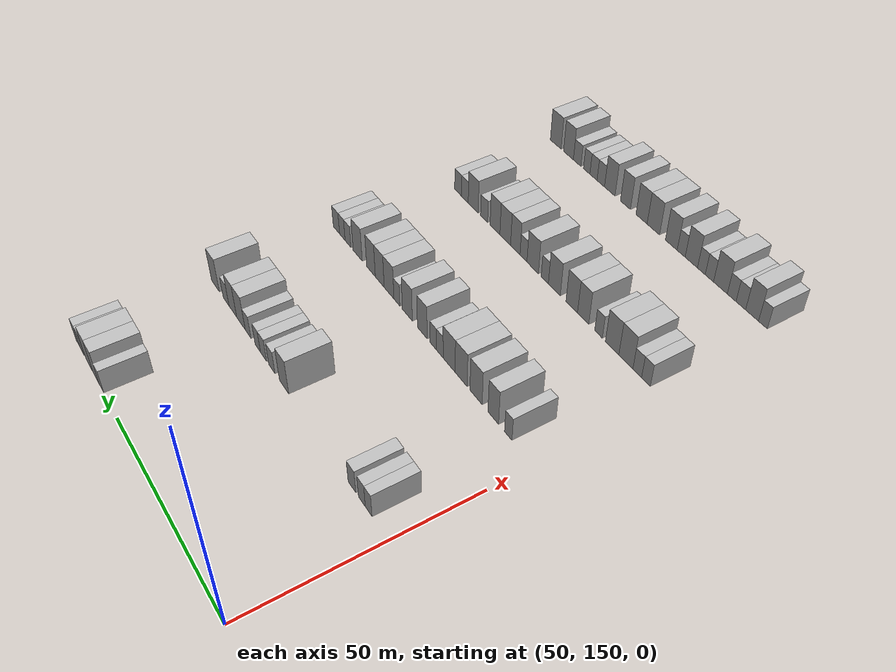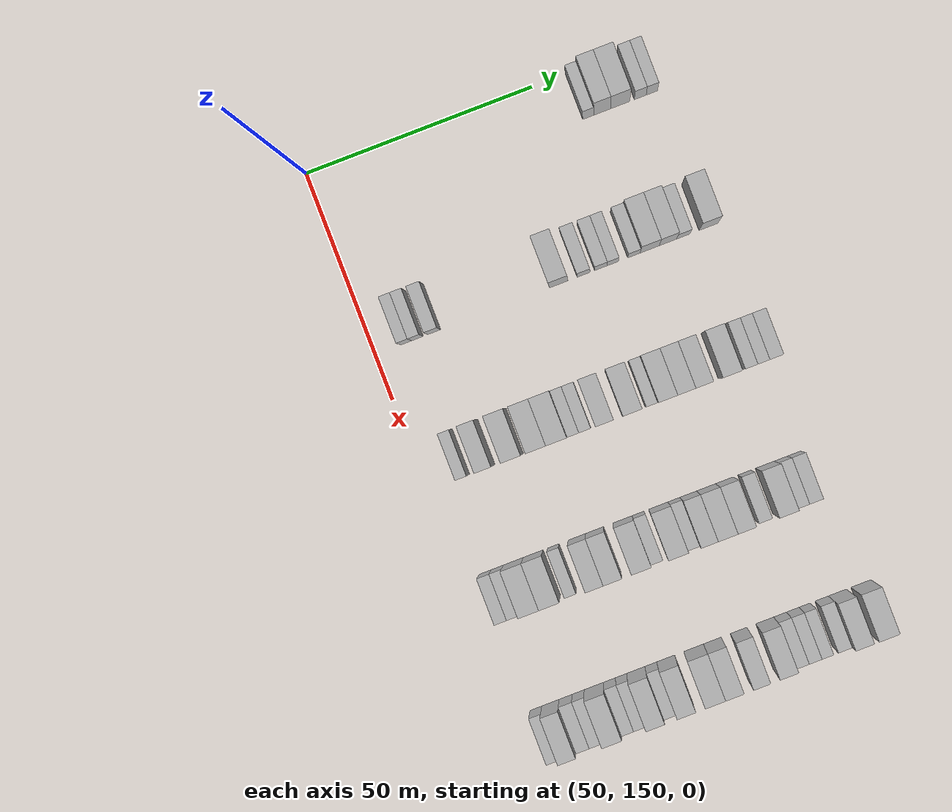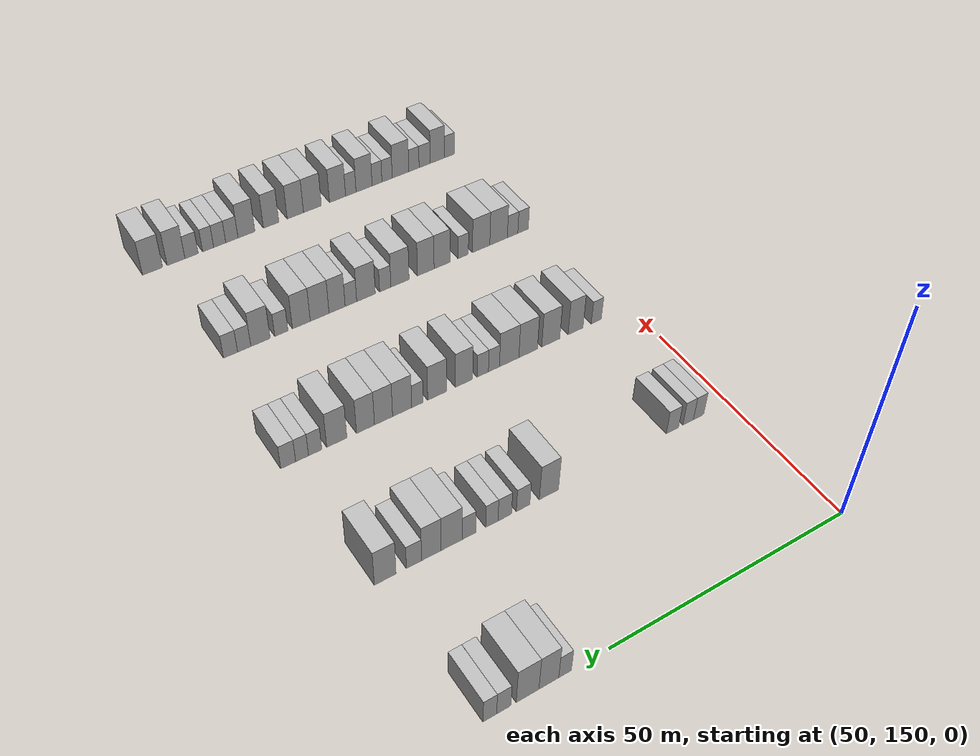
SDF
<sdf version="1.6">
 <world name="default">
  <model name="building_404">
   <static>1</static>
   <pose>55.0000 208.5626 0 0.000000 0.000000 0.000000</pose>
   <link name="link">
    <pose>0 0 3.00 0 0 0</pose>
    <collision name="collision"><geometry><box><size>10.0000 2.4251 6.0000</size></box></geometry></collision>
    <visual name="visual">
     <cast_shadows>0</cast_shadows>
     <geometry><box><size>10.0000 2.4251 6.0000</size></box></geometry>
     <material>
      <script>
       <uri>model://HANNAS_wall/materials/scripts</uri>
       <uri>model://HANNAS_wall/materials/textures</uri>
       <name>vrc/HANNAS_wall</name>
      </script>
     </material>
    </visual>
   </link>
  </model>
  <model name="building_405">
   <static>1</static>
   <pose>55.0000 211.6468 0 0.000000 0.000000 0.000000</pose>
   <link name="link">
    <pose>0 0 4.50 0 0 0</pose>
    <collision name="collision"><geometry><box><size>10.0000 3.7434 9.0000</size></box></geometry></collision>
    <visual name="visual">
     <cast_shadows>0</cast_shadows>
     <geometry><box><size>10.0000 3.7434 9.0000</size></box></geometry>
     <material>
      <script>
       <uri>model://HANNAS_wall/materials/scripts</uri>
       <uri>model://HANNAS_wall/materials/textures</uri>
       <name>vrc/HANNAS_wall</name>
      </script>
     </material>
    </visual>
   </link>
  </model>
  <model name="building_406">
   <static>1</static>
   <pose>55.0000 215.6364 0 0.000000 0.000000 0.000000</pose>
   <link name="link">
    <pose>0 0 4.50 0 0 0</pose>
    <collision name="collision"><geometry><box><size>10.0000 4.2358 9.0000</size></box></geometry></collision>
    <visual name="visual">
     <cast_shadows>0</cast_shadows>
     <geometry><box><size>10.0000 4.2358 9.0000</size></box></geometry>
     <material>
      <script>
       <uri>model://HANNAS_wall/materials/scripts</uri>
       <uri>model://HANNAS_wall/materials/textures</uri>
       <name>vrc/HANNAS_wall</name>
      </script>
     </material>
    </visual>
   </link>
  </model>
  <model name="building_407">
   <static>1</static>
   <pose>55.0000 220.0596 0 0.000000 0.000000 0.000000</pose>
   <link name="link">
    <pose>0 0 3.00 0 0 0</pose>
    <collision name="collision"><geometry><box><size>10.0000 2.6106 6.0000</size></box></geometry></collision>
    <visual name="visual">
     <cast_shadows>0</cast_shadows>
     <geometry><box><size>10.0000 2.6106 6.0000</size></box></geometry>
     <material>
      <script>
       <uri>model://HANNAS_wall/materials/scripts</uri>
       <uri>model://HANNAS_wall/materials/textures</uri>
       <name>vrc/HANNAS_wall</name>
      </script>
     </material>
    </visual>
   </link>
  </model>
  <model name="building_408">
   <static>1</static>
   <pose>55.0000 222.6099 0 0.000000 0.000000 0.000000</pose>
   <link name="link">
    <pose>0 0 3.00 0 0 0</pose>
    <collision name="collision"><geometry><box><size>10.0000 2.4899 6.0000</size></box></geometry></collision>
    <visual name="visual">
     <cast_shadows>0</cast_shadows>
     <geometry><box><size>10.0000 2.4899 6.0000</size></box></geometry>
     <material>
      <script>
       <uri>model://HANNAS_wall/materials/scripts</uri>
       <uri>model://HANNAS_wall/materials/textures</uri>
       <name>vrc/HANNAS_wall</name>
      </script>
     </material>
    </visual>
   </link>
  </model>
  <model name="building_625">
   <static>1</static>
   <pose>85.0000 156.9187 0 0.000000 0.000000 0.000000</pose>
   <link name="link">
    <pose>0 0 3.00 0 0 0</pose>
    <collision name="collision"><geometry><box><size>10.0000 2.4283 6.0000</size></box></geometry></collision>
    <visual name="visual">
     <cast_shadows>0</cast_shadows>
     <geometry><box><size>10.0000 2.4283 6.0000</size></box></geometry>
     <material>
      <script>
       <uri>model://HANNAS_wall/materials/scripts</uri>
       <uri>model://HANNAS_wall/materials/textures</uri>
       <name>vrc/HANNAS_wall</name>
      </script>
     </material>
    </visual>
   </link>
  </model>
  <model name="building_626">
   <static>1</static>
   <pose>85.0000 159.3759 0 0.000000 0.000000 0.000000</pose>
   <link name="link">
    <pose>0 0 3.00 0 0 0</pose>
    <collision name="collision"><geometry><box><size>10.0000 2.4861 6.0000</size></box></geometry></collision>
    <visual name="visual">
     <cast_shadows>0</cast_shadows>
     <geometry><box><size>10.0000 2.4861 6.0000</size></box></geometry>
     <material>
      <script>
       <uri>model://HANNAS_wall/materials/scripts</uri>
       <uri>model://HANNAS_wall/materials/textures</uri>
       <name>vrc/HANNAS_wall</name>
      </script>
     </material>
    </visual>
   </link>
  </model>
  <model name="building_627">
   <static>1</static>
   <pose>85.0000 163.0467 0 0.000000 0.000000 0.000000</pose>
   <link name="link">
    <pose>0 0 3.00 0 0 0</pose>
    <collision name="collision"><geometry><box><size>10.0000 2.8555 6.0000</size></box></geometry></collision>
    <visual name="visual">
     <cast_shadows>0</cast_shadows>
     <geometry><box><size>10.0000 2.8555 6.0000</size></box></geometry>
     <material>
      <script>
       <uri>model://HANNAS_wall/materials/scripts</uri>
       <uri>model://HANNAS_wall/materials/textures</uri>
       <name>vrc/HANNAS_wall</name>
      </script>
     </material>
    </visual>
   </link>
  </model>
  <model name="building_628">
   <static>1</static>
   <pose>85.0000 190.5747 0 0.000000 0.000000 0.000000</pose>
   <link name="link">
    <pose>0 0 4.50 0 0 0</pose>
    <collision name="collision"><geometry><box><size>10.0000 4.0668 9.0000</size></box></geometry></collision>
    <visual name="visual">
     <cast_shadows>0</cast_shadows>
     <geometry><box><size>10.0000 4.0668 9.0000</size></box></geometry>
     <material>
      <script>
       <uri>model://HANNAS_wall/materials/scripts</uri>
       <uri>model://HANNAS_wall/materials/textures</uri>
       <name>vrc/HANNAS_wall</name>
      </script>
     </material>
    </visual>
   </link>
  </model>
  <model name="building_629">
   <static>1</static>
   <pose>85.0000 196.0280 0 0.000000 0.000000 0.000000</pose>
   <link name="link">
    <pose>0 0 3.00 0 0 0</pose>
    <collision name="collision"><geometry><box><size>10.0000 2.8398 6.0000</size></box></geometry></collision>
    <visual name="visual">
     <cast_shadows>0</cast_shadows>
     <geometry><box><size>10.0000 2.8398 6.0000</size></box></geometry>
     <material>
      <script>
       <uri>model://HANNAS_wall/materials/scripts</uri>
       <uri>model://HANNAS_wall/materials/textures</uri>
       <name>vrc/HANNAS_wall</name>
      </script>
     </material>
    </visual>
   </link>
  </model>
  <model name="building_630">
   <static>1</static>
   <pose>85.0000 199.8489 0 0.000000 0.000000 0.000000</pose>
   <link name="link">
    <pose>0 0 3.00 0 0 0</pose>
    <collision name="collision"><geometry><box><size>10.0000 2.8021 6.0000</size></box></geometry></collision>
    <visual name="visual">
     <cast_shadows>0</cast_shadows>
     <geometry><box><size>10.0000 2.8021 6.0000</size></box></geometry>
     <material>
      <script>
       <uri>model://HANNAS_wall/materials/scripts</uri>
       <uri>model://HANNAS_wall/materials/textures</uri>
       <name>vrc/HANNAS_wall</name>
      </script>
     </material>
    </visual>
   </link>
  </model>
  <model name="building_631">
   <static>1</static>
   <pose>85.0000 202.5129 0 0.000000 0.000000 0.000000</pose>
   <link name="link">
    <pose>0 0 3.00 0 0 0</pose>
    <collision name="collision"><geometry><box><size>10.0000 2.5260 6.0000</size></box></geometry></collision>
    <visual name="visual">
     <cast_shadows>0</cast_shadows>
     <geometry><box><size>10.0000 2.5260 6.0000</size></box></geometry>
     <material>
      <script>
       <uri>model://HANNAS_wall/materials/scripts</uri>
       <uri>model://HANNAS_wall/materials/textures</uri>
       <name>vrc/HANNAS_wall</name>
      </script>
     </material>
    </visual>
   </link>
  </model>
  <model name="building_632">
   <static>1</static>
   <pose>85.0000 207.1509 0 0.000000 0.000000 0.000000</pose>
   <link name="link">
    <pose>0 0 3.00 0 0 0</pose>
    <collision name="collision"><geometry><box><size>10.0000 2.7500 6.0000</size></box></geometry></collision>
    <visual name="visual">
     <cast_shadows>0</cast_shadows>
     <geometry><box><size>10.0000 2.7500 6.0000</size></box></geometry>
     <material>
      <script>
       <uri>model://HANNAS_wall/materials/scripts</uri>
       <uri>model://HANNAS_wall/materials/textures</uri>
       <name>vrc/HANNAS_wall</name>
      </script>
     </material>
    </visual>
   </link>
  </model>
  <model name="building_633">
   <static>1</static>
   <pose>85.0000 210.6252 0 0.000000 0.000000 0.000000</pose>
   <link name="link">
    <pose>0 0 4.50 0 0 0</pose>
    <collision name="collision"><geometry><box><size>10.0000 4.1986 9.0000</size></box></geometry></collision>
    <visual name="visual">
     <cast_shadows>0</cast_shadows>
     <geometry><box><size>10.0000 4.1986 9.0000</size></box></geometry>
     <material>
      <script>
       <uri>model://HANNAS_wall/materials/scripts</uri>
       <uri>model://HANNAS_wall/materials/textures</uri>
       <name>vrc/HANNAS_wall</name>
      </script>
     </material>
    </visual>
   </link>
  </model>
  <model name="building_634">
   <static>1</static>
   <pose>85.0000 214.6497 0 0.000000 0.000000 0.000000</pose>
   <link name="link">
    <pose>0 0 4.50 0 0 0</pose>
    <collision name="collision"><geometry><box><size>10.0000 3.8505 9.0000</size></box></geometry></collision>
    <visual name="visual">
     <cast_shadows>0</cast_shadows>
     <geometry><box><size>10.0000 3.8505 9.0000</size></box></geometry>
     <material>
      <script>
       <uri>model://HANNAS_wall/materials/scripts</uri>
       <uri>model://HANNAS_wall/materials/textures</uri>
       <name>vrc/HANNAS_wall</name>
      </script>
     </material>
    </visual>
   </link>
  </model>
  <model name="building_635">
   <static>1</static>
   <pose>85.0000 218.0554 0 0.000000 0.000000 0.000000</pose>
   <link name="link">
    <pose>0 0 3.00 0 0 0</pose>
    <collision name="collision"><geometry><box><size>10.0000 2.9609 6.0000</size></box></geometry></collision>
    <visual name="visual">
     <cast_shadows>0</cast_shadows>
     <geometry><box><size>10.0000 2.9609 6.0000</size></box></geometry>
     <material>
      <script>
       <uri>model://HANNAS_wall/materials/scripts</uri>
       <uri>model://HANNAS_wall/materials/textures</uri>
       <name>vrc/HANNAS_wall</name>
      </script>
     </material>
    </visual>
   </link>
  </model>
  <model name="building_636">
   <static>1</static>
   <pose>85.0000 223.6099 0 0.000000 0.000000 0.000000</pose>
   <link name="link">
    <pose>0 0 4.50 0 0 0</pose>
    <collision name="collision"><geometry><box><size>10.0000 4.1481 9.0000</size></box></geometry></collision>
    <visual name="visual">
     <cast_shadows>0</cast_shadows>
     <geometry><box><size>10.0000 4.1481 9.0000</size></box></geometry>
     <material>
      <script>
       <uri>model://HANNAS_wall/materials/scripts</uri>
       <uri>model://HANNAS_wall/materials/textures</uri>
       <name>vrc/HANNAS_wall</name>
      </script>
     </material>
    </visual>
   </link>
  </model>
  <model name="building_839">
   <static>1</static>
   <pose>115.0000 158.1144 0 0.000000 0.000000 0.000000</pose>
   <link name="link">
    <pose>0 0 3.00 0 0 0</pose>
    <collision name="collision"><geometry><box><size>10.0000 2.4552 6.0000</size></box></geometry></collision>
    <visual name="visual">
     <cast_shadows>0</cast_shadows>
     <geometry><box><size>10.0000 2.4552 6.0000</size></box></geometry>
     <material>
      <script>
       <uri>model://HANNAS_wall/materials/scripts</uri>
       <uri>model://HANNAS_wall/materials/textures</uri>
       <name>vrc/HANNAS_wall</name>
      </script>
     </material>
    </visual>
   </link>
  </model>
  <model name="building_840">
   <static>1</static>
   <pose>115.0000 163.1450 0 0.000000 0.000000 0.000000</pose>
   <link name="link">
    <pose>0 0 4.50 0 0 0</pose>
    <collision name="collision"><geometry><box><size>10.0000 3.6060 9.0000</size></box></geometry></collision>
    <visual name="visual">
     <cast_shadows>0</cast_shadows>
     <geometry><box><size>10.0000 3.6060 9.0000</size></box></geometry>
     <material>
      <script>
       <uri>model://HANNAS_wall/materials/scripts</uri>
       <uri>model://HANNAS_wall/materials/textures</uri>
       <name>vrc/HANNAS_wall</name>
      </script>
     </material>
    </visual>
   </link>
  </model>
  <model name="building_841">
   <static>1</static>
   <pose>115.0000 169.0878 0 0.000000 0.000000 0.000000</pose>
   <link name="link">
    <pose>0 0 4.50 0 0 0</pose>
    <collision name="collision"><geometry><box><size>10.0000 4.2796 9.0000</size></box></geometry></collision>
    <visual name="visual">
     <cast_shadows>0</cast_shadows>
     <geometry><box><size>10.0000 4.2796 9.0000</size></box></geometry>
     <material>
      <script>
       <uri>model://HANNAS_wall/materials/scripts</uri>
       <uri>model://HANNAS_wall/materials/textures</uri>
       <name>vrc/HANNAS_wall</name>
      </script>
     </material>
    </visual>
   </link>
  </model>
  <model name="building_842">
   <static>1</static>
   <pose>115.0000 174.4031 0 0.000000 0.000000 0.000000</pose>
   <link name="link">
    <pose>0 0 4.50 0 0 0</pose>
    <collision name="collision"><geometry><box><size>10.0000 4.3511 9.0000</size></box></geometry></collision>
    <visual name="visual">
     <cast_shadows>0</cast_shadows>
     <geometry><box><size>10.0000 4.3511 9.0000</size></box></geometry>
     <material>
      <script>
       <uri>model://HANNAS_wall/materials/scripts</uri>
       <uri>model://HANNAS_wall/materials/textures</uri>
       <name>vrc/HANNAS_wall</name>
      </script>
     </material>
    </visual>
   </link>
  </model>
  <model name="building_843">
   <static>1</static>
   <pose>115.0000 178.8126 0 0.000000 0.000000 0.000000</pose>
   <link name="link">
    <pose>0 0 4.50 0 0 0</pose>
    <collision name="collision"><geometry><box><size>10.0000 4.4679 9.0000</size></box></geometry></collision>
    <visual name="visual">
     <cast_shadows>0</cast_shadows>
     <geometry><box><size>10.0000 4.4679 9.0000</size></box></geometry>
     <material>
      <script>
       <uri>model://HANNAS_wall/materials/scripts</uri>
       <uri>model://HANNAS_wall/materials/textures</uri>
       <name>vrc/HANNAS_wall</name>
      </script>
     </material>
    </visual>
   </link>
  </model>
  <model name="building_844">
   <static>1</static>
   <pose>115.0000 182.3023 0 0.000000 0.000000 0.000000</pose>
   <link name="link">
    <pose>0 0 3.00 0 0 0</pose>
    <collision name="collision"><geometry><box><size>10.0000 2.5116 6.0000</size></box></geometry></collision>
    <visual name="visual">
     <cast_shadows>0</cast_shadows>
     <geometry><box><size>10.0000 2.5116 6.0000</size></box></geometry>
     <material>
      <script>
       <uri>model://HANNAS_wall/materials/scripts</uri>
       <uri>model://HANNAS_wall/materials/textures</uri>
       <name>vrc/HANNAS_wall</name>
      </script>
     </material>
    </visual>
   </link>
  </model>
  <model name="building_845">
   <static>1</static>
   <pose>115.0000 184.8450 0 0.000000 0.000000 0.000000</pose>
   <link name="link">
    <pose>0 0 3.00 0 0 0</pose>
    <collision name="collision"><geometry><box><size>10.0000 2.5738 6.0000</size></box></geometry></collision>
    <visual name="visual">
     <cast_shadows>0</cast_shadows>
     <geometry><box><size>10.0000 2.5738 6.0000</size></box></geometry>
     <material>
      <script>
       <uri>model://HANNAS_wall/materials/scripts</uri>
       <uri>model://HANNAS_wall/materials/textures</uri>
       <name>vrc/HANNAS_wall</name>
      </script>
     </material>
    </visual>
   </link>
  </model>
  <model name="building_846">
   <static>1</static>
   <pose>115.0000 189.0633 0 0.000000 0.000000 0.000000</pose>
   <link name="link">
    <pose>0 0 4.50 0 0 0</pose>
    <collision name="collision"><geometry><box><size>10.0000 3.8628 9.0000</size></box></geometry></collision>
    <visual name="visual">
     <cast_shadows>0</cast_shadows>
     <geometry><box><size>10.0000 3.8628 9.0000</size></box></geometry>
     <material>
      <script>
       <uri>model://HANNAS_wall/materials/scripts</uri>
       <uri>model://HANNAS_wall/materials/textures</uri>
       <name>vrc/HANNAS_wall</name>
      </script>
     </material>
    </visual>
   </link>
  </model>
  <model name="building_847">
   <static>1</static>
   <pose>115.0000 195.0438 0 0.000000 0.000000 0.000000</pose>
   <link name="link">
    <pose>0 0 4.50 0 0 0</pose>
    <collision name="collision"><geometry><box><size>10.0000 4.0983 9.0000</size></box></geometry></collision>
    <visual name="visual">
     <cast_shadows>0</cast_shadows>
     <geometry><box><size>10.0000 4.0983 9.0000</size></box></geometry>
     <material>
      <script>
       <uri>model://HANNAS_wall/materials/scripts</uri>
       <uri>model://HANNAS_wall/materials/textures</uri>
       <name>vrc/HANNAS_wall</name>
      </script>
     </material>
    </visual>
   </link>
  </model>
  <model name="building_848">
   <static>1</static>
   <pose>115.0000 199.3252 0 0.000000 0.000000 0.000000</pose>
   <link name="link">
    <pose>0 0 3.00 0 0 0</pose>
    <collision name="collision"><geometry><box><size>10.0000 2.4644 6.0000</size></box></geometry></collision>
    <visual name="visual">
     <cast_shadows>0</cast_shadows>
     <geometry><box><size>10.0000 2.4644 6.0000</size></box></geometry>
     <material>
      <script>
       <uri>model://HANNAS_wall/materials/scripts</uri>
       <uri>model://HANNAS_wall/materials/textures</uri>
       <name>vrc/HANNAS_wall</name>
      </script>
     </material>
    </visual>
   </link>
  </model>
  <model name="building_849">
   <static>1</static>
   <pose>115.0000 202.6095 0 0.000000 0.000000 0.000000</pose>
   <link name="link">
    <pose>0 0 4.50 0 0 0</pose>
    <collision name="collision"><geometry><box><size>10.0000 4.1044 9.0000</size></box></geometry></collision>
    <visual name="visual">
     <cast_shadows>0</cast_shadows>
     <geometry><box><size>10.0000 4.1044 9.0000</size></box></geometry>
     <material>
      <script>
       <uri>model://HANNAS_wall/materials/scripts</uri>
       <uri>model://HANNAS_wall/materials/textures</uri>
       <name>vrc/HANNAS_wall</name>
      </script>
     </material>
    </visual>
   </link>
  </model>
  <model name="building_850">
   <static>1</static>
   <pose>115.0000 206.5822 0 0.000000 0.000000 0.000000</pose>
   <link name="link">
    <pose>0 0 4.50 0 0 0</pose>
    <collision name="collision"><geometry><box><size>10.0000 3.8409 9.0000</size></box></geometry></collision>
    <visual name="visual">
     <cast_shadows>0</cast_shadows>
     <geometry><box><size>10.0000 3.8409 9.0000</size></box></geometry>
     <material>
      <script>
       <uri>model://HANNAS_wall/materials/scripts</uri>
       <uri>model://HANNAS_wall/materials/textures</uri>
       <name>vrc/HANNAS_wall</name>
      </script>
     </material>
    </visual>
   </link>
  </model>
  <model name="building_851">
   <static>1</static>
   <pose>115.0000 210.3938 0 0.000000 0.000000 0.000000</pose>
   <link name="link">
    <pose>0 0 4.50 0 0 0</pose>
    <collision name="collision"><geometry><box><size>10.0000 3.7824 9.0000</size></box></geometry></collision>
    <visual name="visual">
     <cast_shadows>0</cast_shadows>
     <geometry><box><size>10.0000 3.7824 9.0000</size></box></geometry>
     <material>
      <script>
       <uri>model://HANNAS_wall/materials/scripts</uri>
       <uri>model://HANNAS_wall/materials/textures</uri>
       <name>vrc/HANNAS_wall</name>
      </script>
     </material>
    </visual>
   </link>
  </model>
  <model name="building_852">
   <static>1</static>
   <pose>115.0000 216.3574 0 0.000000 0.000000 0.000000</pose>
   <link name="link">
    <pose>0 0 4.50 0 0 0</pose>
    <collision name="collision"><geometry><box><size>10.0000 4.1450 9.0000</size></box></geometry></collision>
    <visual name="visual">
     <cast_shadows>0</cast_shadows>
     <geometry><box><size>10.0000 4.1450 9.0000</size></box></geometry>
     <material>
      <script>
       <uri>model://HANNAS_wall/materials/scripts</uri>
       <uri>model://HANNAS_wall/materials/textures</uri>
       <name>vrc/HANNAS_wall</name>
      </script>
     </material>
    </visual>
   </link>
  </model>
  <model name="building_853">
   <static>1</static>
   <pose>115.0000 220.7822 0 0.000000 0.000000 0.000000</pose>
   <link name="link">
    <pose>0 0 3.00 0 0 0</pose>
    <collision name="collision"><geometry><box><size>10.0000 2.7045 6.0000</size></box></geometry></collision>
    <visual name="visual">
     <cast_shadows>0</cast_shadows>
     <geometry><box><size>10.0000 2.7045 6.0000</size></box></geometry>
     <material>
      <script>
       <uri>model://HANNAS_wall/materials/scripts</uri>
       <uri>model://HANNAS_wall/materials/textures</uri>
       <name>vrc/HANNAS_wall</name>
      </script>
     </material>
    </visual>
   </link>
  </model>
  <model name="building_854">
   <static>1</static>
   <pose>115.0000 223.4254 0 0.000000 0.000000 0.000000</pose>
   <link name="link">
    <pose>0 0 3.00 0 0 0</pose>
    <collision name="collision"><geometry><box><size>10.0000 2.5820 6.0000</size></box></geometry></collision>
    <visual name="visual">
     <cast_shadows>0</cast_shadows>
     <geometry><box><size>10.0000 2.5820 6.0000</size></box></geometry>
     <material>
      <script>
       <uri>model://HANNAS_wall/materials/scripts</uri>
       <uri>model://HANNAS_wall/materials/textures</uri>
       <name>vrc/HANNAS_wall</name>
      </script>
     </material>
    </visual>
   </link>
  </model>
  <model name="building_855">
   <static>1</static>
   <pose>115.0000 226.2106 0 0.000000 0.000000 0.000000</pose>
   <link name="link">
    <pose>0 0 3.00 0 0 0</pose>
    <collision name="collision"><geometry><box><size>10.0000 2.9883 6.0000</size></box></geometry></collision>
    <visual name="visual">
     <cast_shadows>0</cast_shadows>
     <geometry><box><size>10.0000 2.9883 6.0000</size></box></geometry>
     <material>
      <script>
       <uri>model://HANNAS_wall/materials/scripts</uri>
       <uri>model://HANNAS_wall/materials/textures</uri>
       <name>vrc/HANNAS_wall</name>
      </script>
     </material>
    </visual>
   </link>
  </model>
  <model name="building_1067">
   <static>1</static>
   <pose>145.0000 155.1394 0 0.000000 0.000000 0.000000</pose>
   <link name="link">
    <pose>0 0 3.00 0 0 0</pose>
    <collision name="collision"><geometry><box><size>10.0000 2.6660 6.0000</size></box></geometry></collision>
    <visual name="visual">
     <cast_shadows>0</cast_shadows>
     <geometry><box><size>10.0000 2.6660 6.0000</size></box></geometry>
     <material>
      <script>
       <uri>model://HANNAS_wall/materials/scripts</uri>
       <uri>model://HANNAS_wall/materials/textures</uri>
       <name>vrc/HANNAS_wall</name>
      </script>
     </material>
    </visual>
   </link>
  </model>
  <model name="building_1068">
   <static>1</static>
   <pose>145.0000 157.8061 0 0.000000 0.000000 0.000000</pose>
   <link name="link">
    <pose>0 0 3.00 0 0 0</pose>
    <collision name="collision"><geometry><box><size>10.0000 2.6674 6.0000</size></box></geometry></collision>
    <visual name="visual">
     <cast_shadows>0</cast_shadows>
     <geometry><box><size>10.0000 2.6674 6.0000</size></box></geometry>
     <material>
      <script>
       <uri>model://HANNAS_wall/materials/scripts</uri>
       <uri>model://HANNAS_wall/materials/textures</uri>
       <name>vrc/HANNAS_wall</name>
      </script>
     </material>
    </visual>
   </link>
  </model>
  <model name="building_1069">
   <static>1</static>
   <pose>145.0000 161.3538 0 0.000000 0.000000 0.000000</pose>
   <link name="link">
    <pose>0 0 4.50 0 0 0</pose>
    <collision name="collision"><geometry><box><size>10.0000 4.4280 9.0000</size></box></geometry></collision>
    <visual name="visual">
     <cast_shadows>0</cast_shadows>
     <geometry><box><size>10.0000 4.4280 9.0000</size></box></geometry>
     <material>
      <script>
       <uri>model://HANNAS_wall/materials/scripts</uri>
       <uri>model://HANNAS_wall/materials/textures</uri>
       <name>vrc/HANNAS_wall</name>
      </script>
     </material>
    </visual>
   </link>
  </model>
  <model name="building_1070">
   <static>1</static>
   <pose>145.0000 165.7379 0 0.000000 0.000000 0.000000</pose>
   <link name="link">
    <pose>0 0 4.50 0 0 0</pose>
    <collision name="collision"><geometry><box><size>10.0000 4.3403 9.0000</size></box></geometry></collision>
    <visual name="visual">
     <cast_shadows>0</cast_shadows>
     <geometry><box><size>10.0000 4.3403 9.0000</size></box></geometry>
     <material>
      <script>
       <uri>model://HANNAS_wall/materials/scripts</uri>
       <uri>model://HANNAS_wall/materials/textures</uri>
       <name>vrc/HANNAS_wall</name>
      </script>
     </material>
    </visual>
   </link>
  </model>
  <model name="building_1071">
   <static>1</static>
   <pose>145.0000 170.1681 0 0.000000 0.000000 0.000000</pose>
   <link name="link">
    <pose>0 0 3.00 0 0 0</pose>
    <collision name="collision"><geometry><box><size>10.0000 2.5200 6.0000</size></box></geometry></collision>
    <visual name="visual">
     <cast_shadows>0</cast_shadows>
     <geometry><box><size>10.0000 2.5200 6.0000</size></box></geometry>
     <material>
      <script>
       <uri>model://HANNAS_wall/materials/scripts</uri>
       <uri>model://HANNAS_wall/materials/textures</uri>
       <name>vrc/HANNAS_wall</name>
      </script>
     </material>
    </visual>
   </link>
  </model>
  <model name="building_1072">
   <static>1</static>
   <pose>145.0000 175.3468 0 0.000000 0.000000 0.000000</pose>
   <link name="link">
    <pose>0 0 4.50 0 0 0</pose>
    <collision name="collision"><geometry><box><size>10.0000 3.8374 9.0000</size></box></geometry></collision>
    <visual name="visual">
     <cast_shadows>0</cast_shadows>
     <geometry><box><size>10.0000 3.8374 9.0000</size></box></geometry>
     <material>
      <script>
       <uri>model://HANNAS_wall/materials/scripts</uri>
       <uri>model://HANNAS_wall/materials/textures</uri>
       <name>vrc/HANNAS_wall</name>
      </script>
     </material>
    </visual>
   </link>
  </model>
  <model name="building_1073">
   <static>1</static>
   <pose>145.0000 179.2613 0 0.000000 0.000000 0.000000</pose>
   <link name="link">
    <pose>0 0 4.50 0 0 0</pose>
    <collision name="collision"><geometry><box><size>10.0000 3.9915 9.0000</size></box></geometry></collision>
    <visual name="visual">
     <cast_shadows>0</cast_shadows>
     <geometry><box><size>10.0000 3.9915 9.0000</size></box></geometry>
     <material>
      <script>
       <uri>model://HANNAS_wall/materials/scripts</uri>
       <uri>model://HANNAS_wall/materials/textures</uri>
       <name>vrc/HANNAS_wall</name>
      </script>
     </material>
    </visual>
   </link>
  </model>
  <model name="building_1074">
   <static>1</static>
   <pose>145.0000 185.3938 0 0.000000 0.000000 0.000000</pose>
   <link name="link">
    <pose>0 0 4.50 0 0 0</pose>
    <collision name="collision"><geometry><box><size>10.0000 4.2735 9.0000</size></box></geometry></collision>
    <visual name="visual">
     <cast_shadows>0</cast_shadows>
     <geometry><box><size>10.0000 4.2735 9.0000</size></box></geometry>
     <material>
      <script>
       <uri>model://HANNAS_wall/materials/scripts</uri>
       <uri>model://HANNAS_wall/materials/textures</uri>
       <name>vrc/HANNAS_wall</name>
      </script>
     </material>
    </visual>
   </link>
  </model>
  <model name="building_1075">
   <static>1</static>
   <pose>145.0000 188.8504 0 0.000000 0.000000 0.000000</pose>
   <link name="link">
    <pose>0 0 3.00 0 0 0</pose>
    <collision name="collision"><geometry><box><size>10.0000 2.6398 6.0000</size></box></geometry></collision>
    <visual name="visual">
     <cast_shadows>0</cast_shadows>
     <geometry><box><size>10.0000 2.6398 6.0000</size></box></geometry>
     <material>
      <script>
       <uri>model://HANNAS_wall/materials/scripts</uri>
       <uri>model://HANNAS_wall/materials/textures</uri>
       <name>vrc/HANNAS_wall</name>
      </script>
     </material>
    </visual>
   </link>
  </model>
  <model name="building_1076">
   <static>1</static>
   <pose>145.0000 193.3130 0 0.000000 0.000000 0.000000</pose>
   <link name="link">
    <pose>0 0 4.50 0 0 0</pose>
    <collision name="collision"><geometry><box><size>10.0000 4.2855 9.0000</size></box></geometry></collision>
    <visual name="visual">
     <cast_shadows>0</cast_shadows>
     <geometry><box><size>10.0000 4.2855 9.0000</size></box></geometry>
     <material>
      <script>
       <uri>model://HANNAS_wall/materials/scripts</uri>
       <uri>model://HANNAS_wall/materials/textures</uri>
       <name>vrc/HANNAS_wall</name>
      </script>
     </material>
    </visual>
   </link>
  </model>
  <model name="building_1077">
   <static>1</static>
   <pose>145.0000 196.7785 0 0.000000 0.000000 0.000000</pose>
   <link name="link">
    <pose>0 0 3.00 0 0 0</pose>
    <collision name="collision"><geometry><box><size>10.0000 2.6456 6.0000</size></box></geometry></collision>
    <visual name="visual">
     <cast_shadows>0</cast_shadows>
     <geometry><box><size>10.0000 2.6456 6.0000</size></box></geometry>
     <material>
      <script>
       <uri>model://HANNAS_wall/materials/scripts</uri>
       <uri>model://HANNAS_wall/materials/textures</uri>
       <name>vrc/HANNAS_wall</name>
      </script>
     </material>
    </visual>
   </link>
  </model>
  <model name="building_1078">
   <static>1</static>
   <pose>145.0000 199.9246 0 0.000000 0.000000 0.000000</pose>
   <link name="link">
    <pose>0 0 4.50 0 0 0</pose>
    <collision name="collision"><geometry><box><size>10.0000 3.6466 9.0000</size></box></geometry></collision>
    <visual name="visual">
     <cast_shadows>0</cast_shadows>
     <geometry><box><size>10.0000 3.6466 9.0000</size></box></geometry>
     <material>
      <script>
       <uri>model://HANNAS_wall/materials/scripts</uri>
       <uri>model://HANNAS_wall/materials/textures</uri>
       <name>vrc/HANNAS_wall</name>
      </script>
     </material>
    </visual>
   </link>
  </model>
  <model name="building_1079">
   <static>1</static>
   <pose>145.0000 203.8481 0 0.000000 0.000000 0.000000</pose>
   <link name="link">
    <pose>0 0 4.50 0 0 0</pose>
    <collision name="collision"><geometry><box><size>10.0000 4.2002 9.0000</size></box></geometry></collision>
    <visual name="visual">
     <cast_shadows>0</cast_shadows>
     <geometry><box><size>10.0000 4.2002 9.0000</size></box></geometry>
     <material>
      <script>
       <uri>model://HANNAS_wall/materials/scripts</uri>
       <uri>model://HANNAS_wall/materials/textures</uri>
       <name>vrc/HANNAS_wall</name>
      </script>
     </material>
    </visual>
   </link>
  </model>
  <model name="building_1080">
   <static>1</static>
   <pose>145.0000 207.9213 0 0.000000 0.000000 0.000000</pose>
   <link name="link">
    <pose>0 0 4.50 0 0 0</pose>
    <collision name="collision"><geometry><box><size>10.0000 3.9462 9.0000</size></box></geometry></collision>
    <visual name="visual">
     <cast_shadows>0</cast_shadows>
     <geometry><box><size>10.0000 3.9462 9.0000</size></box></geometry>
     <material>
      <script>
       <uri>model://HANNAS_wall/materials/scripts</uri>
       <uri>model://HANNAS_wall/materials/textures</uri>
       <name>vrc/HANNAS_wall</name>
      </script>
     </material>
    </visual>
   </link>
  </model>
  <model name="building_1081">
   <static>1</static>
   <pose>145.0000 212.3360 0 0.000000 0.000000 0.000000</pose>
   <link name="link">
    <pose>0 0 3.00 0 0 0</pose>
    <collision name="collision"><geometry><box><size>10.0000 2.8832 6.0000</size></box></geometry></collision>
    <visual name="visual">
     <cast_shadows>0</cast_shadows>
     <geometry><box><size>10.0000 2.8832 6.0000</size></box></geometry>
     <material>
      <script>
       <uri>model://HANNAS_wall/materials/scripts</uri>
       <uri>model://HANNAS_wall/materials/textures</uri>
       <name>vrc/HANNAS_wall</name>
      </script>
     </material>
    </visual>
   </link>
  </model>
  <model name="building_1082">
   <static>1</static>
   <pose>145.0000 216.8627 0 0.000000 0.000000 0.000000</pose>
   <link name="link">
    <pose>0 0 4.50 0 0 0</pose>
    <collision name="collision"><geometry><box><size>10.0000 4.1701 9.0000</size></box></geometry></collision>
    <visual name="visual">
     <cast_shadows>0</cast_shadows>
     <geometry><box><size>10.0000 4.1701 9.0000</size></box></geometry>
     <material>
      <script>
       <uri>model://HANNAS_wall/materials/scripts</uri>
       <uri>model://HANNAS_wall/materials/textures</uri>
       <name>vrc/HANNAS_wall</name>
      </script>
     </material>
    </visual>
   </link>
  </model>
  <model name="building_1083">
   <static>1</static>
   <pose>145.0000 220.3623 0 0.000000 0.000000 0.000000</pose>
   <link name="link">
    <pose>0 0 3.00 0 0 0</pose>
    <collision name="collision"><geometry><box><size>10.0000 2.8292 6.0000</size></box></geometry></collision>
    <visual name="visual">
     <cast_shadows>0</cast_shadows>
     <geometry><box><size>10.0000 2.8292 6.0000</size></box></geometry>
     <material>
      <script>
       <uri>model://HANNAS_wall/materials/scripts</uri>
       <uri>model://HANNAS_wall/materials/textures</uri>
       <name>vrc/HANNAS_wall</name>
      </script>
     </material>
    </visual>
   </link>
  </model>
  <model name="building_1084">
   <static>1</static>
   <pose>145.0000 223.2715 0 0.000000 0.000000 0.000000</pose>
   <link name="link">
    <pose>0 0 3.00 0 0 0</pose>
    <collision name="collision"><geometry><box><size>10.0000 2.9891 6.0000</size></box></geometry></collision>
    <visual name="visual">
     <cast_shadows>0</cast_shadows>
     <geometry><box><size>10.0000 2.9891 6.0000</size></box></geometry>
     <material>
      <script>
       <uri>model://HANNAS_wall/materials/scripts</uri>
       <uri>model://HANNAS_wall/materials/textures</uri>
       <name>vrc/HANNAS_wall</name>
      </script>
     </material>
    </visual>
   </link>
  </model>
  <model name="building_1295">
   <static>1</static>
   <pose>175.0000 154.7824 0 0.000000 0.000000 0.000000</pose>
   <link name="link">
    <pose>0 0 3.00 0 0 0</pose>
    <collision name="collision"><geometry><box><size>10.0000 2.5725 6.0000</size></box></geometry></collision>
    <visual name="visual">
     <cast_shadows>0</cast_shadows>
     <geometry><box><size>10.0000 2.5725 6.0000</size></box></geometry>
     <material>
      <script>
       <uri>model://HANNAS_wall/materials/scripts</uri>
       <uri>model://HANNAS_wall/materials/textures</uri>
       <name>vrc/HANNAS_wall</name>
      </script>
     </material>
    </visual>
   </link>
  </model>
  <model name="building_1296">
   <static>1</static>
   <pose>175.0000 157.9777 0 0.000000 0.000000 0.000000</pose>
   <link name="link">
    <pose>0 0 4.50 0 0 0</pose>
    <collision name="collision"><geometry><box><size>10.0000 3.8180 9.0000</size></box></geometry></collision>
    <visual name="visual">
     <cast_shadows>0</cast_shadows>
     <geometry><box><size>10.0000 3.8180 9.0000</size></box></geometry>
     <material>
      <script>
       <uri>model://HANNAS_wall/materials/scripts</uri>
       <uri>model://HANNAS_wall/materials/textures</uri>
       <name>vrc/HANNAS_wall</name>
      </script>
     </material>
    </visual>
   </link>
  </model>
  <model name="building_1297">
   <static>1</static>
   <pose>175.0000 161.3246 0 0.000000 0.000000 0.000000</pose>
   <link name="link">
    <pose>0 0 3.00 0 0 0</pose>
    <collision name="collision"><geometry><box><size>10.0000 2.8758 6.0000</size></box></geometry></collision>
    <visual name="visual">
     <cast_shadows>0</cast_shadows>
     <geometry><box><size>10.0000 2.8758 6.0000</size></box></geometry>
     <material>
      <script>
       <uri>model://HANNAS_wall/materials/scripts</uri>
       <uri>model://HANNAS_wall/materials/textures</uri>
       <name>vrc/HANNAS_wall</name>
      </script>
     </material>
    </visual>
   </link>
  </model>
  <model name="building_1298">
   <static>1</static>
   <pose>175.0000 164.0985 0 0.000000 0.000000 0.000000</pose>
   <link name="link">
    <pose>0 0 3.00 0 0 0</pose>
    <collision name="collision"><geometry><box><size>10.0000 2.6719 6.0000</size></box></geometry></collision>
    <visual name="visual">
     <cast_shadows>0</cast_shadows>
     <geometry><box><size>10.0000 2.6719 6.0000</size></box></geometry>
     <material>
      <script>
       <uri>model://HANNAS_wall/materials/scripts</uri>
       <uri>model://HANNAS_wall/materials/textures</uri>
       <name>vrc/HANNAS_wall</name>
      </script>
     </material>
    </visual>
   </link>
  </model>
  <model name="building_1299">
   <static>1</static>
   <pose>175.0000 167.5689 0 0.000000 0.000000 0.000000</pose>
   <link name="link">
    <pose>0 0 4.50 0 0 0</pose>
    <collision name="collision"><geometry><box><size>10.0000 4.2689 9.0000</size></box></geometry></collision>
    <visual name="visual">
     <cast_shadows>0</cast_shadows>
     <geometry><box><size>10.0000 4.2689 9.0000</size></box></geometry>
     <material>
      <script>
       <uri>model://HANNAS_wall/materials/scripts</uri>
       <uri>model://HANNAS_wall/materials/textures</uri>
       <name>vrc/HANNAS_wall</name>
      </script>
     </material>
    </visual>
   </link>
  </model>
  <model name="building_1300">
   <static>1</static>
   <pose>175.0000 171.0141 0 0.000000 0.000000 0.000000</pose>
   <link name="link">
    <pose>0 0 3.00 0 0 0</pose>
    <collision name="collision"><geometry><box><size>10.0000 2.6216 6.0000</size></box></geometry></collision>
    <visual name="visual">
     <cast_shadows>0</cast_shadows>
     <geometry><box><size>10.0000 2.6216 6.0000</size></box></geometry>
     <material>
      <script>
       <uri>model://HANNAS_wall/materials/scripts</uri>
       <uri>model://HANNAS_wall/materials/textures</uri>
       <name>vrc/HANNAS_wall</name>
      </script>
     </material>
    </visual>
   </link>
  </model>
  <model name="building_1301">
   <static>1</static>
   <pose>175.0000 173.5726 0 0.000000 0.000000 0.000000</pose>
   <link name="link">
    <pose>0 0 3.00 0 0 0</pose>
    <collision name="collision"><geometry><box><size>10.0000 2.4953 6.0000</size></box></geometry></collision>
    <visual name="visual">
     <cast_shadows>0</cast_shadows>
     <geometry><box><size>10.0000 2.4953 6.0000</size></box></geometry>
     <material>
      <script>
       <uri>model://HANNAS_wall/materials/scripts</uri>
       <uri>model://HANNAS_wall/materials/textures</uri>
       <name>vrc/HANNAS_wall</name>
      </script>
     </material>
    </visual>
   </link>
  </model>
  <model name="building_1302">
   <static>1</static>
   <pose>175.0000 176.8321 0 0.000000 0.000000 0.000000</pose>
   <link name="link">
    <pose>0 0 4.50 0 0 0</pose>
    <collision name="collision"><geometry><box><size>10.0000 4.0238 9.0000</size></box></geometry></collision>
    <visual name="visual">
     <cast_shadows>0</cast_shadows>
     <geometry><box><size>10.0000 4.0238 9.0000</size></box></geometry>
     <material>
      <script>
       <uri>model://HANNAS_wall/materials/scripts</uri>
       <uri>model://HANNAS_wall/materials/textures</uri>
       <name>vrc/HANNAS_wall</name>
      </script>
     </material>
    </visual>
   </link>
  </model>
  <model name="building_1303">
   <static>1</static>
   <pose>175.0000 180.1542 0 0.000000 0.000000 0.000000</pose>
   <link name="link">
    <pose>0 0 3.00 0 0 0</pose>
    <collision name="collision"><geometry><box><size>10.0000 2.6203 6.0000</size></box></geometry></collision>
    <visual name="visual">
     <cast_shadows>0</cast_shadows>
     <geometry><box><size>10.0000 2.6203 6.0000</size></box></geometry>
     <material>
      <script>
       <uri>model://HANNAS_wall/materials/scripts</uri>
       <uri>model://HANNAS_wall/materials/textures</uri>
       <name>vrc/HANNAS_wall</name>
      </script>
     </material>
    </visual>
   </link>
  </model>
  <model name="building_1304">
   <static>1</static>
   <pose>175.0000 183.4530 0 0.000000 0.000000 0.000000</pose>
   <link name="link">
    <pose>0 0 4.50 0 0 0</pose>
    <collision name="collision"><geometry><box><size>10.0000 3.9775 9.0000</size></box></geometry></collision>
    <visual name="visual">
     <cast_shadows>0</cast_shadows>
     <geometry><box><size>10.0000 3.9775 9.0000</size></box></geometry>
     <material>
      <script>
       <uri>model://HANNAS_wall/materials/scripts</uri>
       <uri>model://HANNAS_wall/materials/textures</uri>
       <name>vrc/HANNAS_wall</name>
      </script>
     </material>
    </visual>
   </link>
  </model>
  <model name="building_1305">
   <static>1</static>
   <pose>175.0000 189.6104 0 0.000000 0.000000 0.000000</pose>
   <link name="link">
    <pose>0 0 4.50 0 0 0</pose>
    <collision name="collision"><geometry><box><size>10.0000 4.3373 9.0000</size></box></geometry></collision>
    <visual name="visual">
     <cast_shadows>0</cast_shadows>
     <geometry><box><size>10.0000 4.3373 9.0000</size></box></geometry>
     <material>
      <script>
       <uri>model://HANNAS_wall/materials/scripts</uri>
       <uri>model://HANNAS_wall/materials/textures</uri>
       <name>vrc/HANNAS_wall</name>
      </script>
     </material>
    </visual>
   </link>
  </model>
  <model name="building_1306">
   <static>1</static>
   <pose>175.0000 193.7470 0 0.000000 0.000000 0.000000</pose>
   <link name="link">
    <pose>0 0 4.50 0 0 0</pose>
    <collision name="collision"><geometry><box><size>10.0000 3.9358 9.0000</size></box></geometry></collision>
    <visual name="visual">
     <cast_shadows>0</cast_shadows>
     <geometry><box><size>10.0000 3.9358 9.0000</size></box></geometry>
     <material>
      <script>
       <uri>model://HANNAS_wall/materials/scripts</uri>
       <uri>model://HANNAS_wall/materials/textures</uri>
       <name>vrc/HANNAS_wall</name>
      </script>
     </material>
    </visual>
   </link>
  </model>
  <model name="building_1307">
   <static>1</static>
   <pose>175.0000 199.5379 0 0.000000 0.000000 0.000000</pose>
   <link name="link">
    <pose>0 0 4.50 0 0 0</pose>
    <collision name="collision"><geometry><box><size>10.0000 3.6461 9.0000</size></box></geometry></collision>
    <visual name="visual">
     <cast_shadows>0</cast_shadows>
     <geometry><box><size>10.0000 3.6461 9.0000</size></box></geometry>
     <material>
      <script>
       <uri>model://HANNAS_wall/materials/scripts</uri>
       <uri>model://HANNAS_wall/materials/textures</uri>
       <name>vrc/HANNAS_wall</name>
      </script>
     </material>
    </visual>
   </link>
  </model>
  <model name="building_1308">
   <static>1</static>
   <pose>175.0000 205.3336 0 0.000000 0.000000 0.000000</pose>
   <link name="link">
    <pose>0 0 4.50 0 0 0</pose>
    <collision name="collision"><geometry><box><size>10.0000 3.9452 9.0000</size></box></geometry></collision>
    <visual name="visual">
     <cast_shadows>0</cast_shadows>
     <geometry><box><size>10.0000 3.9452 9.0000</size></box></geometry>
     <material>
      <script>
       <uri>model://HANNAS_wall/materials/scripts</uri>
       <uri>model://HANNAS_wall/materials/textures</uri>
       <name>vrc/HANNAS_wall</name>
      </script>
     </material>
    </visual>
   </link>
  </model>
  <model name="building_1309">
   <static>1</static>
   <pose>175.0000 208.7274 0 0.000000 0.000000 0.000000</pose>
   <link name="link">
    <pose>0 0 3.00 0 0 0</pose>
    <collision name="collision"><geometry><box><size>10.0000 2.8425 6.0000</size></box></geometry></collision>
    <visual name="visual">
     <cast_shadows>0</cast_shadows>
     <geometry><box><size>10.0000 2.8425 6.0000</size></box></geometry>
     <material>
      <script>
       <uri>model://HANNAS_wall/materials/scripts</uri>
       <uri>model://HANNAS_wall/materials/textures</uri>
       <name>vrc/HANNAS_wall</name>
      </script>
     </material>
    </visual>
   </link>
  </model>
  <model name="building_1310">
   <static>1</static>
   <pose>175.0000 211.5299 0 0.000000 0.000000 0.000000</pose>
   <link name="link">
    <pose>0 0 3.00 0 0 0</pose>
    <collision name="collision"><geometry><box><size>10.0000 2.7623 6.0000</size></box></geometry></collision>
    <visual name="visual">
     <cast_shadows>0</cast_shadows>
     <geometry><box><size>10.0000 2.7623 6.0000</size></box></geometry>
     <material>
      <script>
       <uri>model://HANNAS_wall/materials/scripts</uri>
       <uri>model://HANNAS_wall/materials/textures</uri>
       <name>vrc/HANNAS_wall</name>
      </script>
     </material>
    </visual>
   </link>
  </model>
  <model name="building_1311">
   <static>1</static>
   <pose>175.0000 214.1701 0 0.000000 0.000000 0.000000</pose>
   <link name="link">
    <pose>0 0 3.00 0 0 0</pose>
    <collision name="collision"><geometry><box><size>10.0000 2.5182 6.0000</size></box></geometry></collision>
    <visual name="visual">
     <cast_shadows>0</cast_shadows>
     <geometry><box><size>10.0000 2.5182 6.0000</size></box></geometry>
     <material>
      <script>
       <uri>model://HANNAS_wall/materials/scripts</uri>
       <uri>model://HANNAS_wall/materials/textures</uri>
       <name>vrc/HANNAS_wall</name>
      </script>
     </material>
    </visual>
   </link>
  </model>
  <model name="building_1312">
   <static>1</static>
   <pose>175.0000 217.9206 0 0.000000 0.000000 0.000000</pose>
   <link name="link">
    <pose>0 0 3.00 0 0 0</pose>
    <collision name="collision"><geometry><box><size>10.0000 2.9829 6.0000</size></box></geometry></collision>
    <visual name="visual">
     <cast_shadows>0</cast_shadows>
     <geometry><box><size>10.0000 2.9829 6.0000</size></box></geometry>
     <material>
      <script>
       <uri>model://HANNAS_wall/materials/scripts</uri>
       <uri>model://HANNAS_wall/materials/textures</uri>
       <name>vrc/HANNAS_wall</name>
      </script>
     </material>
    </visual>
   </link>
  </model>
  <model name="building_1313">
   <static>1</static>
   <pose>175.0000 221.4058 0 0.000000 0.000000 0.000000</pose>
   <link name="link">
    <pose>0 0 4.50 0 0 0</pose>
    <collision name="collision"><geometry><box><size>10.0000 3.9873 9.0000</size></box></geometry></collision>
    <visual name="visual">
     <cast_shadows>0</cast_shadows>
     <geometry><box><size>10.0000 3.9873 9.0000</size></box></geometry>
     <material>
      <script>
       <uri>model://HANNAS_wall/materials/scripts</uri>
       <uri>model://HANNAS_wall/materials/textures</uri>
       <name>vrc/HANNAS_wall</name>
      </script>
     </material>
    </visual>
   </link>
  </model>
  <model name="building_1314">
   <static>1</static>
   <pose>175.0000 226.6190 0 0.000000 0.000000 0.000000</pose>
   <link name="link">
    <pose>0 0 4.50 0 0 0</pose>
    <collision name="collision"><geometry><box><size>10.0000 4.4393 9.0000</size></box></geometry></collision>
    <visual name="visual">
     <cast_shadows>0</cast_shadows>
     <geometry><box><size>10.0000 4.4393 9.0000</size></box></geometry>
     <material>
      <script>
       <uri>model://HANNAS_wall/materials/scripts</uri>
       <uri>model://HANNAS_wall/materials/textures</uri>
       <name>vrc/HANNAS_wall</name>
      </script>
     </material>
    </visual>
   </link>
  </model>
 </world>
</sdf>
